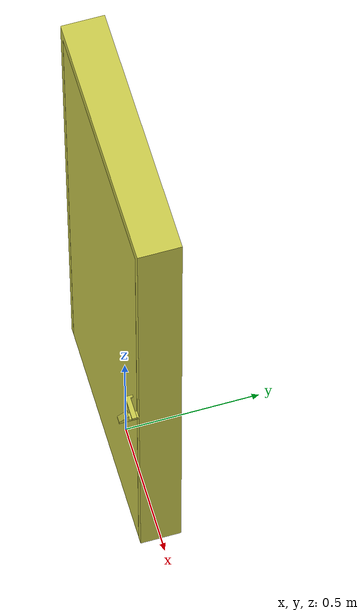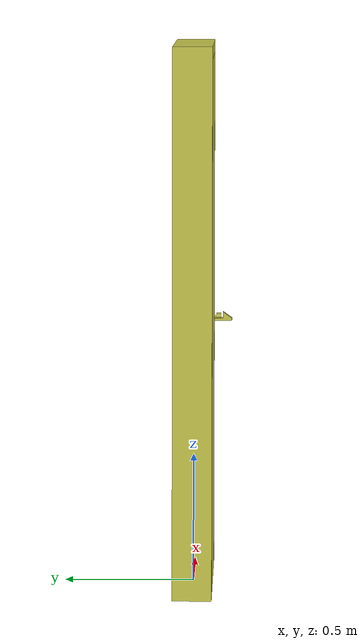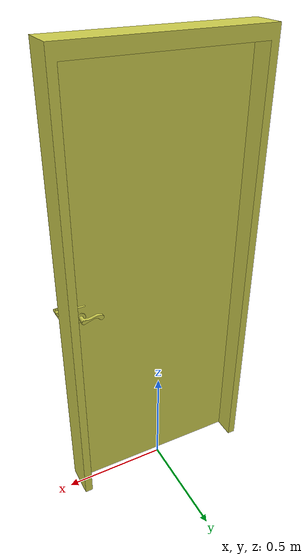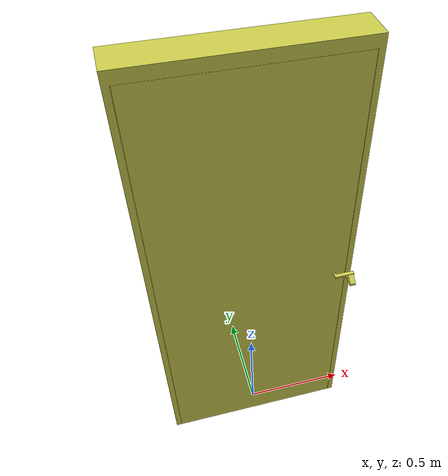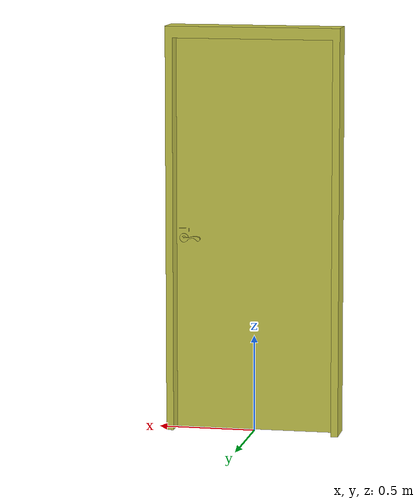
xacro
<?xml version="1.0" ?>
<robot xmlns:xacro="http://www.ros.org/wiki/xacro" name="door">

 <link name="world"/>
  <joint name="fixed" type="fixed">
    <parent link="world"/>
    <child link="baseLink"/>
    <origin rpy= "0 0 1.571" xyz="0 0 0"/>
  </joint>

<link name="baseLink">
    <inertial>
      <origin rpy="0 0 0" xyz="0 0 0"/>
      <mass value="1.0"/>
      <inertia ixx="0.048966669" ixy="0" ixz="0" iyy="0.046466667" iyz="0" izz="0.0041666669"/>
    </inertial>
    <visual>
      <origin rpy="0 0 0" xyz="0 0 0"/>
       <geometry>
         <mesh filename="package://reemc_door/models/meshes/frame3.stl"/>
       </geometry>
	   <material name="doormat0">
      <color rgba="0.8 0.8 0.3 1" />
      </material>

	  </visual>
     <collision>
       <origin rpy="0 0 0" xyz="0 0 0"/>
       <geometry>
         <mesh filename="package://reemc_door/models/meshes/frame3.stl"/>
       </geometry>
     </collision>

   </link>
   <link name="door">
    <inertial>
      <origin rpy="0 0 0" xyz="0 0 0"/>
      <mass value="1.0"/>
      <inertia ixx="0.048966669" ixy="0" ixz="0" iyy="0.046466667" iyz="0" izz="0.0041666669"/>
    </inertial>
    <visual>
      <origin rpy="0 0 0" xyz="0 0 0"/>
       <geometry>
         <mesh filename="package://reemc_door/models/meshes/door3.stl"/>
       </geometry>
	   <material name="doormat0">
      <color rgba="0.8 0.8 0.3 1" />
      </material>

	  </visual>
     <collision>
      <origin rpy="0 0 0" xyz="0 0 0"/>
       <geometry>
         <mesh filename="package://reemc_door/models/meshes/door3.stl"/>
       </geometry>
     </collision>

   </link>

   <joint name="joint_baseLink_door" type="continuous">
    <parent link="baseLink"/>
    <child link="door"/>
	<dynamics damping="1.0" friction="0.0001"/>
    <origin xyz="0 0 0"/>
		<axis xyz="0 0 1"/>

  </joint>

  <link name="lever">
    <inertial>
      <origin rpy="0 0 0" xyz="0 0 0"/>
      <mass value="1.0"/>
      <inertia ixx="0.048966669" ixy="0" ixz="0" iyy="0.046466667" iyz="0" izz="0.0041666669"/>
    </inertial>
    <visual>
      <origin rpy="0 0 0" xyz="0 0 0"/>
       <geometry>
         <mesh filename="package://reemc_door/models/meshes/lever3.stl"/>
       </geometry>
	   <material name="doormat0">
      <color rgba="0.8 0.8 0.3 1" />
      </material>

	  </visual>
     <collision>
       <origin rpy="0 0 0" xyz="0 0 0"/>
       <geometry>
         <mesh filename="package://reemc_door/models/meshes/lever3.stl"/>
       </geometry>
     </collision>

   </link>

   <joint name="joint_door_lever" type="continuous">
    <parent link="door"/>
    <child link="lever"/>
	<dynamics damping="1.0" friction="0.0001"/>
    <origin rpy="0 1.5708 0" xyz="-0.01509 -0.373 1.0"/>
		<axis xyz="0 0 1"/>

  </joint>

  <gazebo reference="lever">
    <self_collide>1</self_collide>
  </gazebo>
  <gazebo reference="baseLink">
    <self_collide>1</self_collide>
  </gazebo>
 <gazebo reference="door">
    <self_collide>1</self_collide>
  </gazebo>
</robot>
